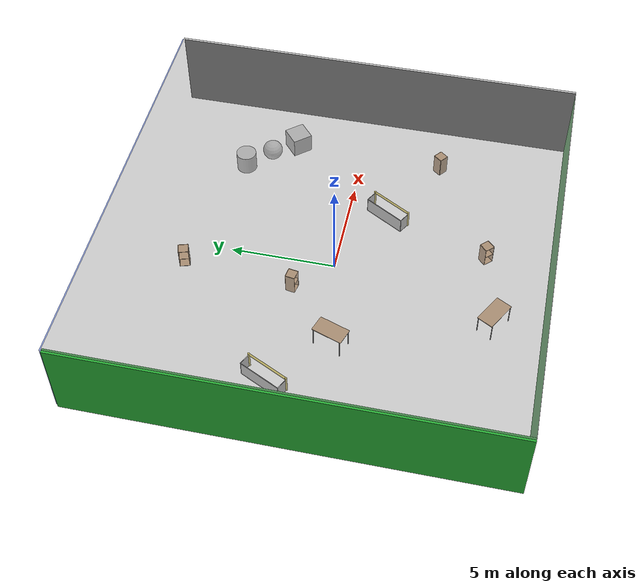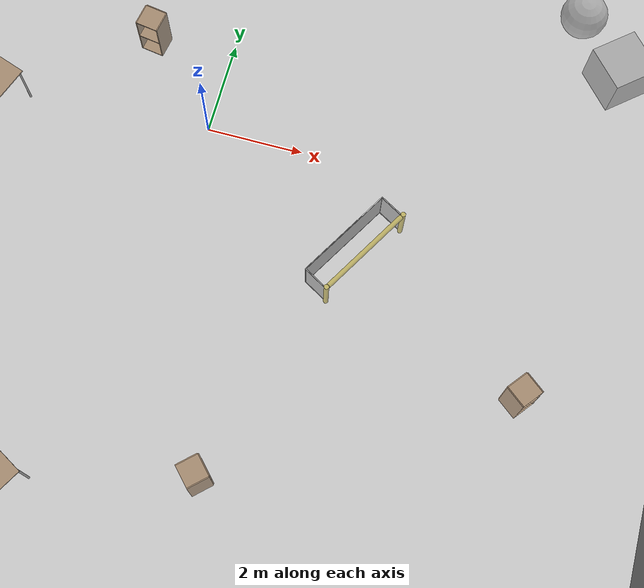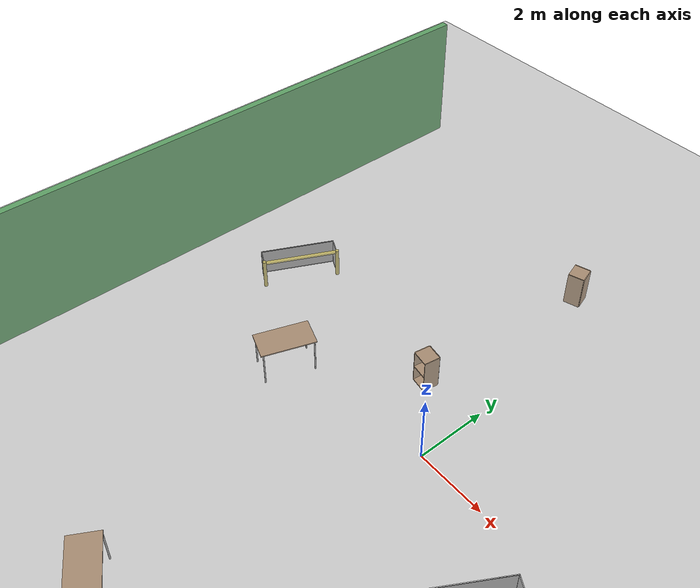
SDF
<sdf version="1.4">
 <world name="default">
  <physics type="ode">
   <max_step_size>0.001</max_step_size>
   <real_time_factor>1</real_time_factor>
   <real_time_update_rate>1000</real_time_update_rate>
   <gravity>0 0 -9.8</gravity>
  </physics>
  <scene><ambient>0.4 0.4 0.4 1</ambient><background>0.7 0.7 0.7 1</background><shadows>1</shadows></scene>
  <model name="Surrounding">
   <static>1</static>
   <link name="Ceiling">
    <collision name="Ceiling_Collision"><geometry><box><size>20 20 0.1</size></box></geometry></collision>
    <visual name="Ceiling_Visual">
     <geometry><box><size>20 20 0.1</size></box></geometry>
     <material>
      <script><uri>file://media/materials/scripts/gazebo.material</uri><name>Gazebo/GreyTransparent</name></script>
     </material>
    </visual>
    <pose>0 0 4.05 0 0 0</pose>
   </link>
   <link name="Wall_South">
    <collision name="Wall_South_Collision">
     <geometry><box><size>20 0 4</size></box></geometry>
     <pose>0 0 2 0 -0 0</pose>
    </collision>
    <visual name="Wall_South_Visual">
     <pose>0 0 2 0 -0 0</pose>
     <geometry><box><size>20 0 4</size></box></geometry>
     <material>
      <script><uri>file://media/materials/scripts/gazebo.material</uri><name>Gazebo/Green</name></script>
     </material>
    </visual>
    <velocity_decay><linear>0</linear><angular>0</angular></velocity_decay>
    <pose>0 -10 0 0 -0 0</pose>
   </link>
   <link name="Wall_East">
    <collision name="Wall_21_Collision">
     <geometry><box><size>20 0 4</size></box></geometry>
     <pose>0 0 2 0 -0 0</pose>
    </collision>
    <visual name="Wall_21_Visual">
     <pose>0 0 2 0 -0 0</pose>
     <geometry><box><size>20 0 4</size></box></geometry>
     <material>
      <script><uri>file://media/materials/scripts/gazebo.material</uri><name>Gazebo/Black</name></script>
     </material>
    </visual>
    <velocity_decay><linear>0</linear><angular>0</angular></velocity_decay>
    <pose>10 0 0 0 -0 1.5708</pose>
   </link>
   <link name="Wall_North">
    <collision name="Wall_22_Collision">
     <geometry><box><size>20 0.2 4</size></box></geometry>
     <pose>0 0 2 0 -0 0</pose>
    </collision>
    <visual name="Wall_22_Visual">
     <pose>0 0 2 0 -0 0</pose>
     <geometry><box><size>20 0.2 4</size></box></geometry>
     <material>
      <script><uri>file://media/materials/scripts/gazebo.material</uri><name>Gazebo/BlueTransparent</name></script>
     </material>
    </visual>
    <velocity_decay><linear>0</linear><angular>0</angular></velocity_decay>
    <pose>0 10 0 0 -0 0</pose>
   </link>
   <link name="Wall_West">
    <collision name="Wall_23_Collision">
     <geometry><box><size>20 0.2 4</size></box></geometry>
     <pose>0 0 2 0 -0 0</pose>
    </collision>
    <visual name="Wall_23_Visual">
     <pose>0 0 2 0 -0 0</pose>
     <geometry><box><size>20 0.2 4</size></box></geometry>
     <material>
      <script><uri>file://media/materials/scripts/gazebo.material</uri><name>Gazebo/GreenGlow</name></script>
     </material>
    </visual>
    <velocity_decay><linear>0</linear><angular>0</angular></velocity_decay>
    <pose>-10 0 0 0 0 -1.5708</pose>
   </link>
   <link name="Ground_link">
    <collision name="collision">
     <pose>0 0 .05 0 -0 0</pose>
     <geometry><box><size>20 20 0.1</size></box></geometry>
    </collision>
    <visual name="visual">
     <pose>0 0 .05 0 -0 0</pose>
     <geometry><box><size>20 20 0.1</size></box></geometry>
     <material>
      <script><uri>file://media/materials/scripts/gazebo.material</uri><name>Gazebo/BlueTransparent</name></script>
     </material>
    </visual>
   </link>
   <static>1</static>
  </model>
  <spherical_coordinates>
   <surface_model>EARTH_WGS84</surface_model>
   <latitude_deg>0</latitude_deg>
   <longitude_deg>0</longitude_deg>
   <elevation>0</elevation>
   <heading_deg>0</heading_deg>
  </spherical_coordinates>
  <light name="lightball_0" type="diffuse">
   <diffuse>0.8 0.8 0.8 1</diffuse>
   <specular>0.2 0.2 0.2 1</specular>
   <attenuation>
    <range>100</range>
    <constant>0.7</constant>
    <linear>0.01</linear>
    <quadratic>0.001</quadratic>
   </attenuation>
   <direction>-0.5 0.1 -0.9</direction>
   <pose>9.64070410154 8.53781916674 1.30227702916 0 0 0</pose>
  </light>
  <light name="lightball_1" type="diffuse">
   <diffuse>0.8 0.8 0.8 1</diffuse>
   <specular>0.2 0.2 0.2 1</specular>
   <attenuation>
    <range>100</range>
    <constant>0.7</constant>
    <linear>0.01</linear>
    <quadratic>0.001</quadratic>
   </attenuation>
   <direction>-0.5 0.1 -0.9</direction>
   <pose>7.33592472365 -5.96797270995 0.92553992785 0 0 0</pose>
  </light>
  <light name="lightball_2" type="diffuse">
   <diffuse>0.8 0.8 0.8 1</diffuse>
   <specular>0.2 0.2 0.2 1</specular>
   <attenuation>
    <range>100</range>
    <constant>0.7</constant>
    <linear>0.01</linear>
    <quadratic>0.001</quadratic>
   </attenuation>
   <direction>-0.5 0.1 -0.9</direction>
   <pose>-0.0404100628607 1.75161673996 2.06233441866 0 0 0</pose>
  </light>
  <light name="lightball_3" type="diffuse">
   <diffuse>0.8 0.8 0.8 1</diffuse>
   <specular>0.2 0.2 0.2 1</specular>
   <attenuation>
    <range>100</range>
    <constant>0.7</constant>
    <linear>0.01</linear>
    <quadratic>0.001</quadratic>
   </attenuation>
   <direction>-0.5 0.1 -0.9</direction>
   <pose>-3.171102951 6.75638297223 0.701806984011 0 0 0</pose>
  </light>
  <light name="lightball_4" type="diffuse">
   <diffuse>0.8 0.8 0.8 1</diffuse>
   <specular>0.2 0.2 0.2 1</specular>
   <attenuation>
    <range>100</range>
    <constant>0.7</constant>
    <linear>0.01</linear>
    <quadratic>0.001</quadratic>
   </attenuation>
   <direction>-0.5 0.1 -0.9</direction>
   <pose>8.77484023965 9.77240872705 0.617145258268 0 0 0</pose>
  </light>
  <light name="lightball_5" type="diffuse">
   <diffuse>0.8 0.8 0.8 1</diffuse>
   <specular>0.2 0.2 0.2 1</specular>
   <attenuation>
    <range>100</range>
    <constant>0.7</constant>
    <linear>0.01</linear>
    <quadratic>0.001</quadratic>
   </attenuation>
   <direction>-0.5 0.1 -0.9</direction>
   <pose>-7.20398953757 5.32412968552 0.623613876483 0 0 0</pose>
  </light>
  <light name="lightball_6" type="diffuse">
   <diffuse>0.8 0.8 0.8 1</diffuse>
   <specular>0.2 0.2 0.2 1</specular>
   <attenuation>
    <range>100</range>
    <constant>0.7</constant>
    <linear>0.01</linear>
    <quadratic>0.001</quadratic>
   </attenuation>
   <direction>-0.5 0.1 -0.9</direction>
   <pose>6.3272682232 3.32579157349 1.2045546961 0 0 0</pose>
  </light>
  <light name="lightball_7" type="diffuse">
   <diffuse>0.8 0.8 0.8 1</diffuse>
   <specular>0.2 0.2 0.2 1</specular>
   <attenuation>
    <range>100</range>
    <constant>0.7</constant>
    <linear>0.01</linear>
    <quadratic>0.001</quadratic>
   </attenuation>
   <direction>-0.5 0.1 -0.9</direction>
   <pose>-1.93520319171 7.80506834658 1.00346458022 0 0 0</pose>
  </light>
  <light name="lightball_8" type="diffuse">
   <diffuse>0.8 0.8 0.8 1</diffuse>
   <specular>0.2 0.2 0.2 1</specular>
   <attenuation>
    <range>100</range>
    <constant>0.7</constant>
    <linear>0.01</linear>
    <quadratic>0.001</quadratic>
   </attenuation>
   <direction>-0.5 0.1 -0.9</direction>
   <pose>-2.76234626262 -0.75332391319 1.46425671041 0 0 0</pose>
  </light>
  <light name="lightball_9" type="diffuse">
   <diffuse>0.8 0.8 0.8 1</diffuse>
   <specular>0.2 0.2 0.2 1</specular>
   <attenuation>
    <range>100</range>
    <constant>0.7</constant>
    <linear>0.01</linear>
    <quadratic>0.001</quadratic>
   </attenuation>
   <direction>-0.5 0.1 -0.9</direction>
   <pose>-0.299457819745 9.56005411027 3.02368713774 0 0 0</pose>
  </light>
  <include>
   <uri>model://robocup_3Dsim_goal</uri>
   <pose>-6.76813583012 1.5405247017 0 0 0 2.68887496503</pose>
  </include>
  <include><uri>model://table</uri><pose>-4.40588297427 -0.762801210492 0 0 0 1.23657221181</pose></include>
  <include><uri>model://table</uri><pose>-1.9227944636 -7.7401913059 0 0 0 2.63160687046</pose></include>
  <include><uri>model://cabinet</uri><pose>-1.65183855367 1.65944239573 0 0 0 1.40842190006</pose></include>
  <include><uri>model://cabinet</uri><pose>-1.21872808334 6.99083991678 0 0 0 0.298870435258</pose></include>
  <include><uri>model://cabinet</uri><pose>1.88990254325 -6.94150217058 0 0 0 0.756976840473</pose></include>
  <include>
   <uri>model://robocup_3Dsim_goal</uri>
   <pose>3.82868057551 -2.04249273862 0 0 0 2.61563461176</pose>
  </include>
  <include><uri>model://cabinet</uri><pose>7.31833752481 -3.93558328966 0 0 0 2.46860286116</pose></include>
  <include>
   <uri>model://textured_shapes</uri>
   <pose>7.01956196074 4.74163268335 0 0 0 0.706490545142</pose>
  </include>
 </world>
</sdf>

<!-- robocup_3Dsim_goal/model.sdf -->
<sdf version="1.5">
  <model name="robocup_3d_goal">
    <static>true</static>
    <link name="left_post">
      <pose>0 1.05 0.45 0 0 0</pose>
      <collision name="collision">
        <geometry>
          <cylinder>
            <radius>0.05</radius>
            <length>0.9</length>
          </cylinder>
        </geometry>
      </collision>
      <visual name="visual">
        <geometry>
          <cylinder>
            <radius>0.05</radius>
            <length>0.9</length>
          </cylinder>
        </geometry>
        <material>
          <script>
            <uri>file://media/materials/scripts/gazebo.material</uri>
            <name>Gazebo/ZincYellow</name>
          </script>
        </material>
      </visual>
    </link>
    <link name="left_support_horiz_lower">
      <pose>0.30 1.05 0.01 0 0 0</pose>
      <collision name="collision">
        <geometry>
          <box>
            <size>0.50 0.02 0.02</size>
          </box>
        </geometry>
      </collision>
      <visual name="visual">
        <geometry>
          <box>
            <size>0.50 0.02 0.02</size>
          </box>
        </geometry>
        <material>
          <script>
            <uri>file://media/materials/scripts/gazebo.material</uri>
            <name>Gazebo/White</name>
          </script>
        </material>
      </visual>
    </link>
    <link name="left_support_horiz_upper">
      <pose>0.30 1.05 0.79 0 0 0</pose>
      <collision name="collision">
        <geometry>
          <box>
            <size>0.50 0.02 0.02</size>
          </box>
        </geometry>
      </collision>
      <visual name="visual">
        <geometry>
          <box>
            <size>0.50 0.02 0.02</size>
          </box>
        </geometry>
        <material>
          <script>
            <uri>file://media/materials/scripts/gazebo.material</uri>
            <name>Gazebo/White</name>
          </script>
        </material>
      </visual>
    </link>
    <link name="left_support_vertical">
      <pose>0.56 1.05 0.4 0 1.5708 0</pose>
      <collision name="collision">
        <geometry>
          <box>
            <size>0.80 0.02 0.02</size>
          </box>
        </geometry>
      </collision>
      <visual name="visual">
        <geometry>
          <box>
            <size>0.80 0.02 0.02</size>
          </box>
        </geometry>
        <material>
          <script>
            <uri>file://media/materials/scripts/gazebo.material</uri>
            <name>Gazebo/White</name>
          </script>
        </material>
      </visual>
    </link>
    <link name="right_support_horiz_lower">
      <pose>0.30 -1.05 0.01 0 0 0</pose>
      <collision name="collision">
        <geometry>
          <box>
            <size>0.50 0.02 0.02</size>
          </box>
        </geometry>
      </collision>
      <visual name="visual">
        <geometry>
          <box>
            <size>0.50 0.02 0.02</size>
          </box>
        </geometry>
        <material>
          <script>
            <uri>file://media/materials/scripts/gazebo.material</uri>
            <name>Gazebo/White</name>
          </script>
        </material>
      </visual>
    </link>
    <link name="right_support_horiz_upper">
      <pose>0.30 -1.05 0.79 0 0 0</pose>
      <collision name="collision">
        <geometry>
          <box>
            <size>0.50 0.02 0.02</size>
          </box>
        </geometry>
      </collision>
      <visual name="visual">
        <geometry>
          <box>
            <size>0.50 0.02 0.02</size>
          </box>
        </geometry>
        <material>
          <script>
            <uri>file://media/materials/scripts/gazebo.material</uri>
            <name>Gazebo/White</name>
          </script>
        </material>
      </visual>
    </link>
    <link name="right_support_vertical">
      <pose>0.56 -1.05 0.4 0 1.5708 0</pose>
      <collision name="collision">
        <geometry>
          <box>
            <size>0.80 0.02 0.02</size>
          </box>
        </geometry>
      </collision>
      <visual name="visual">
        <geometry>
          <box>
            <size>0.80 0.02 0.02</size>
          </box>
        </geometry>
        <material>
          <script>
            <uri>file://media/materials/scripts/gazebo.material</uri>
            <name>Gazebo/White</name>
          </script>
        </material>
      </visual>
    </link>
    <link name="center_support_horiz_lower">
      <pose>0.56 0 0.01 0 1.5708 0</pose>
      <collision name="collision">
        <geometry>
          <box>
            <size>0.02 2.08 0.02</size>
          </box>
        </geometry>
      </collision>
      <visual name="visual">
        <geometry>
          <box>
            <size>0.02 2.08 0.02</size>
          </box>
        </geometry>
        <material>
          <script>
            <uri>file://media/materials/scripts/gazebo.material</uri>
            <name>Gazebo/White</name>
          </script>
        </material>
      </visual>
    </link>
    <link name="center_support_horiz_upper">
      <pose>0.56 0 0.79 0 1.5708 0</pose>
      <collision name="collision">
        <geometry>
          <box>
            <size>0.02 2.08 0.02</size>
          </box>
        </geometry>
      </collision>
      <visual name="visual">
        <geometry>
          <box>
            <size>0.02 2.08 0.02</size>
          </box>
        </geometry>
        <material>
          <script>
            <uri>file://media/materials/scripts/gazebo.material</uri>
            <name>Gazebo/White</name>
          </script>
        </material>
      </visual>
    </link>
    <link name="right_post">
      <pose>0 -1.05 0.45 0 0 0</pose>
      <collision name="collision">
        <geometry>
          <cylinder>
            <radius>0.05</radius>
            <length>0.9</length>
          </cylinder>
        </geometry>
      </collision>
      <visual name="visual">
        <geometry>
          <cylinder>
            <radius>0.05</radius>
            <length>0.9</length>
          </cylinder>
        </geometry>
        <material>
          <script>
            <uri>file://media/materials/scripts/gazebo.material</uri>
            <name>Gazebo/ZincYellow</name>
          </script>
        </material>
      </visual>
    </link>
    <link name="crossbar">
      <pose>0 0 0.85 1.57 1.57 0</pose>
      <collision name="collision">
        <geometry>
          <cylinder>
            <radius>0.05</radius>
            <length>2.0</length>
          </cylinder>
        </geometry>
      </collision>
      <visual name="visual">
        <geometry>
          <cylinder>
            <radius>0.05</radius>
            <length>2.0</length>
          </cylinder>
        </geometry>
        <material>
          <script>
            <uri>file://media/materials/scripts/gazebo.material</uri>
            <name>Gazebo/ZincYellow</name>
          </script>
        </material>
      </visual>
    </link>
    <link name="center_net">
      <pose>0.56 0 0.40 0 0 0</pose>
      <collision name="collision">
        <geometry>
          <box>
            <size>0.01 2.1 0.80</size>
          </box>
        </geometry>
      </collision>
      <visual name="visual">
        <geometry>
          <box>
            <size>0.01 2.1 0.80</size>
          </box>
        </geometry>
        <material>
          <script>
            <uri>model://../model_source/models/robocup09_spl_field/materials/scripts/</uri>
            <uri>model://../model_source/models/robocup09_spl_field/materials/textures/</uri>
            <name>RoboCup/Net</name>
          </script>
        </material>
      </visual>
    </link>
    <link name="left_net">
      <pose>0.30 1.05 0.40 0 0 0</pose>
      <collision name="collision">
        <geometry>
          <box>
            <size>0.50 0.01 0.76</size>
          </box>
        </geometry>
      </collision>
      <visual name="visual">
        <geometry>
          <box>
            <size>0.50 0.01 0.76</size>
          </box>
        </geometry>
        <material>
          <script>
            <uri>model://../model_source/models/robocup09_spl_field/materials/scripts/</uri>
            <uri>model://../model_source/models/robocup09_spl_field/materials/textures/</uri>
            <name>RoboCup/Net</name>
          </script>
        </material>
      </visual>
    </link>
    <link name="right_net">
      <pose>0.30 -1.05 0.40 0 0 0</pose>
      <collision name="collision">
        <geometry>
          <box>
            <size>0.50 0.01 0.76</size>
          </box>
        </geometry>
      </collision>
      <visual name="visual">
        <geometry>
          <box>
            <size>0.50 0.01 0.76</size>
          </box>
        </geometry>
        <material>
          <script>
            <uri>model://../model_source/models/robocup09_spl_field/materials/scripts/</uri>
            <uri>model://../model_source/models/robocup09_spl_field/materials/textures/</uri>
            <name>RoboCup/Net</name>
          </script>
        </material>
      </visual>
    </link>
  </model>
</sdf>

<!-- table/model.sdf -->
<sdf version="1.5">
  <model name="table">
    <static>true</static>
    <link name="link">
      <collision name="surface">
        <pose>0 0 1.0 0 0 0</pose>
        <geometry>
          <box>
            <size>1.5 0.8 0.03</size>
          </box>
        </geometry>
        <surface>
          <friction>
            <ode>
              <mu>0.6</mu>
              <mu2>0.6</mu2>
            </ode>
          </friction>
        </surface>
      </collision>
      <visual name="visual1">
        <pose>0 0 1.0 0 0 0</pose>
        <geometry>
          <box>
            <size>1.5 0.8 0.03</size>
          </box>
        </geometry>
        <material>
          <script>
            <uri>model://media/materials/scripts/gazebo.material</uri>
            <name>Gazebo/Wood</name>
          </script>
        </material>
      </visual>
      <collision name="front_left_leg">
        <pose>0.68 0.38 0.5 0 0 0</pose>
        <geometry>
          <cylinder>
            <radius>0.02</radius>
            <length>1.0</length>
          </cylinder>
        </geometry>
      </collision>
      <visual name="front_left_leg">
        <pose>0.68 0.38 0.5 0 0 0</pose>
        <geometry>
          <cylinder>
            <radius>0.02</radius>
            <length>1.0</length>
          </cylinder>
        </geometry>
        <material>
          <script>
            <uri>model://media/materials/scripts/gazebo.material</uri>
            <name>Gazebo/Grey</name>
          </script>
        </material>
      </visual>
      <collision name="front_right_leg">
        <pose>0.68 -0.38 0.5 0 0 0</pose>
        <geometry>
          <cylinder>
            <radius>0.02</radius>
            <length>1.0</length>
          </cylinder>
        </geometry>
      </collision>
      <visual name="front_right_leg">
        <pose>0.68 -0.38 0.5 0 0 0</pose>
        <geometry>
          <cylinder>
            <radius>0.02</radius>
            <length>1.0</length>
          </cylinder>
        </geometry>
        <material>
          <script>
            <uri>model://media/materials/scripts/gazebo.material</uri>
            <name>Gazebo/Grey</name>
          </script>
        </material>
      </visual>
      <collision name="back_right_leg">
        <pose>-0.68 -0.38 0.5 0 0 0</pose>
        <geometry>
          <cylinder>
            <radius>0.02</radius>
            <length>1.0</length>
          </cylinder>
        </geometry>
      </collision>
      <visual name="back_right_leg">
        <pose>-0.68 -0.38 0.5 0 0 0</pose>
        <geometry>
          <cylinder>
            <radius>0.02</radius>
            <length>1.0</length>
          </cylinder>
        </geometry>
        <material>
          <script>
            <uri>model://media/materials/scripts/gazebo.material</uri>
            <name>Gazebo/Grey</name>
          </script>
        </material>
      </visual>
      <collision name="back_left_leg">
        <pose>-0.68 0.38 0.5 0 0 0</pose>
        <geometry>
          <cylinder>
            <radius>0.02</radius>
            <length>1.0</length>
          </cylinder>
        </geometry>
      </collision>
      <visual name="back_left_leg">
        <pose>-0.68 0.38 0.5 0 0 0</pose>
        <geometry>
          <cylinder>
            <radius>0.02</radius>
            <length>1.0</length>
          </cylinder>
        </geometry>
        <material>
          <script>
            <uri>model://media/materials/scripts/gazebo.material</uri>
            <name>Gazebo/Grey</name>
          </script>
        </material>
      </visual>
    </link>
  </model>
</sdf>

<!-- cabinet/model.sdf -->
<sdf version="1.5">
  <model name="cabinet">
    <static>true</static>
    <link name="cabinet_bottom_plate">
      <inertial>
        <pose>0 0 -1 0 0 0</pose>
        <inertia>
          <ixx>2.050000</ixx>
          <ixy>0</ixy>
          <ixz>0</ixz>
          <iyy>2.050000</iyy>
          <iyz>0</iyz>
          <izz>2.050000</izz>
        </inertia>
        <mass>25.000000</mass>
      </inertial>
      <collision name="cabinet_bottom_plate_geom">
        <pose>0 0 0.010000 0 0 0</pose>
        <geometry>
          <box>
            <size>0.450000 0.450000 0.020000</size>
          </box>
        </geometry>
      </collision>
      <visual name="cabinet_bottom_plate_geom_visual">
        <pose>0 0 0.010000 0 0 0</pose>
        <geometry>
          <box>
            <size>0.450000 0.450000 0.020000</size>
          </box>
        </geometry>
        <material>
          <script>
            <uri>model://media/materials/scripts/gazebo.material</uri>
            <name>Gazebo/Wood</name>
          </script>
        </material>
      </visual>
      <collision name="cabinet_bottom_plate_geom_cabinet_back_plate">
        <pose>0.235000 0 0.510000 0 0 0</pose>
        <geometry>
          <box>
            <size>0.020000 0.450000 1.020000</size>
          </box>
        </geometry>
      </collision>
      <visual name="cabinet_bottom_plate_geom_cabinet_back_plate_visual">
        <pose>0.235000 0 0.510000 0 0 0</pose>
        <geometry>
          <box>
            <size>0.020000 0.450000 1.020000</size>
          </box>
        </geometry>
        <material>
          <script>
            <uri>model://media/materials/scripts/gazebo.material</uri>
            <name>Gazebo/Wood</name>
          </script>
        </material>
      </visual>
      <collision name="cabinet_bottom_plate_geom_cabinet_left_plate">
        <pose>0 0.235000 0.510000 0 0 0</pose>
        <geometry>
          <box>
            <size>0.450000 0.020000 1.020000</size>
          </box>
        </geometry>
      </collision>
      <visual name="cabinet_bottom_plate_geom_cabinet_left_plate_visual">
        <pose>0 0.235000 0.510000 0 0 0</pose>
        <geometry>
          <box>
            <size>0.450000 0.020000 1.020000</size>
          </box>
        </geometry>
        <material>
          <script>
            <uri>model://media/materials/scripts/gazebo.material</uri>
            <name>Gazebo/Wood</name>
          </script>
        </material>
      </visual>
      <collision name="cabinet_bottom_plate_geom_cabinet_middle_plate">
        <pose>0 0 0.510000 0 0 0</pose>
        <geometry>
          <box>
            <size>0.450000 0.450000 0.020000</size>
          </box>
        </geometry>
      </collision>
      <visual name="cabinet_bottom_plate_geom_cabinet_middle_plate_visual">
        <pose>0 0 0.510000 0 0 0</pose>
        <geometry>
          <box>
            <size>0.450000 0.450000 0.020000</size>
          </box>
        </geometry>
        <material>
          <script>
            <uri>model://media/materials/scripts/gazebo.material</uri>
            <name>Gazebo/Wood</name>
          </script>
        </material>
      </visual>
      <collision name="cabinet_bottom_plate_geom_cabinet_right_plate">
        <pose>0 -0.235000 0.510000 0 0 0</pose>
        <geometry>
          <box>
            <size>0.450000 0.020000 1.020000</size>
          </box>
        </geometry>
      </collision>
      <visual name="cabinet_bottom_plate_geom_cabinet_right_plate_visual">
        <pose>0 -0.235000 0.510000 0 0 0</pose>
        <geometry>
          <box>
            <size>0.450000 0.020000 1.020000</size>
          </box>
        </geometry>
        <material>
          <script>
            <uri>model://media/materials/scripts/gazebo.material</uri>
            <name>Gazebo/Wood</name>
          </script>
        </material>
      </visual>
      <collision name="cabinet_bottom_plate_geom_cabinet_top_plate">
        <pose>0 0 1.010000 0 0 0</pose>
        <geometry>
          <box>
            <size>0.450000 0.450000 0.020000</size>
          </box>
        </geometry>
      </collision>
      <visual name="cabinet_bottom_plate_geom_cabinet_top_plate_visual">
        <pose>0 0 1.010000 0 0 0</pose>
        <geometry>
          <box>
            <size>0.450000 0.450000 0.020000</size>
          </box>
        </geometry>
        <material>
          <script>
            <uri>model://media/materials/scripts/gazebo.material</uri>
            <name>Gazebo/Wood</name>
          </script>
        </material>
      </visual>
    </link>
  </model>
</sdf>

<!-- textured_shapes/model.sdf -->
<sdf version="1.6">
  <model name="textured_shapes">
    <pose>0 0 0.5 0 0 0</pose>
    <link name="box">
      <pose>0 -1.5 0 0 0 0</pose>
      <collision name="collision">
        <geometry>
          <box>
            <size>1 1 1</size>
          </box>
        </geometry>
      </collision>
      <visual name="visual">
        <geometry>
          <box>
            <size>1 1 1</size>
          </box>
        </geometry>
        <material>
          <script>
            <uri>model://../model_source/models/textured_shapes/materials/scripts</uri>
            <uri>model://../model_source/models/textured_shapes/materials/textures</uri>
            <name>TexturedShape/Squares</name>
          </script>
        </material>
      </visual>
    </link>
    <link name="sphere">
      <collision name="collision">
        <geometry>
          <sphere>
            <radius>0.5</radius>
          </sphere>
        </geometry>
      </collision>
      <visual name="visual">
        <geometry>
          <sphere>
            <radius>0.5</radius>
          </sphere>
        </geometry>
        <material>
          <script>
            <uri>model://../model_source/models/textured_shapes/materials/scripts</uri>
            <uri>model://../model_source/models/textured_shapes/materials/textures</uri>
            <name>TexturedShape/Squares</name>
          </script>
        </material>
      </visual>
    </link>
    <link name="cylinder">
      <pose>0 1.5 0 0 0 0</pose>
      <collision name="collision">
        <geometry>
          <cylinder>
            <radius>0.5</radius>
            <length>1</length>
          </cylinder>
        </geometry>
      </collision>
      <visual name="visual">
        <geometry>
          <cylinder>
            <radius>0.5</radius>
            <length>1</length>
          </cylinder>
        </geometry>
        <material>
          <script>
            <uri>model://../model_source/models/textured_shapes/materials/scripts</uri>
            <uri>model://../model_source/models/textured_shapes/materials/textures</uri>
            <name>TexturedShape/Squares</name>
          </script>
        </material>
      </visual>
    </link>
  </model>
</sdf>
